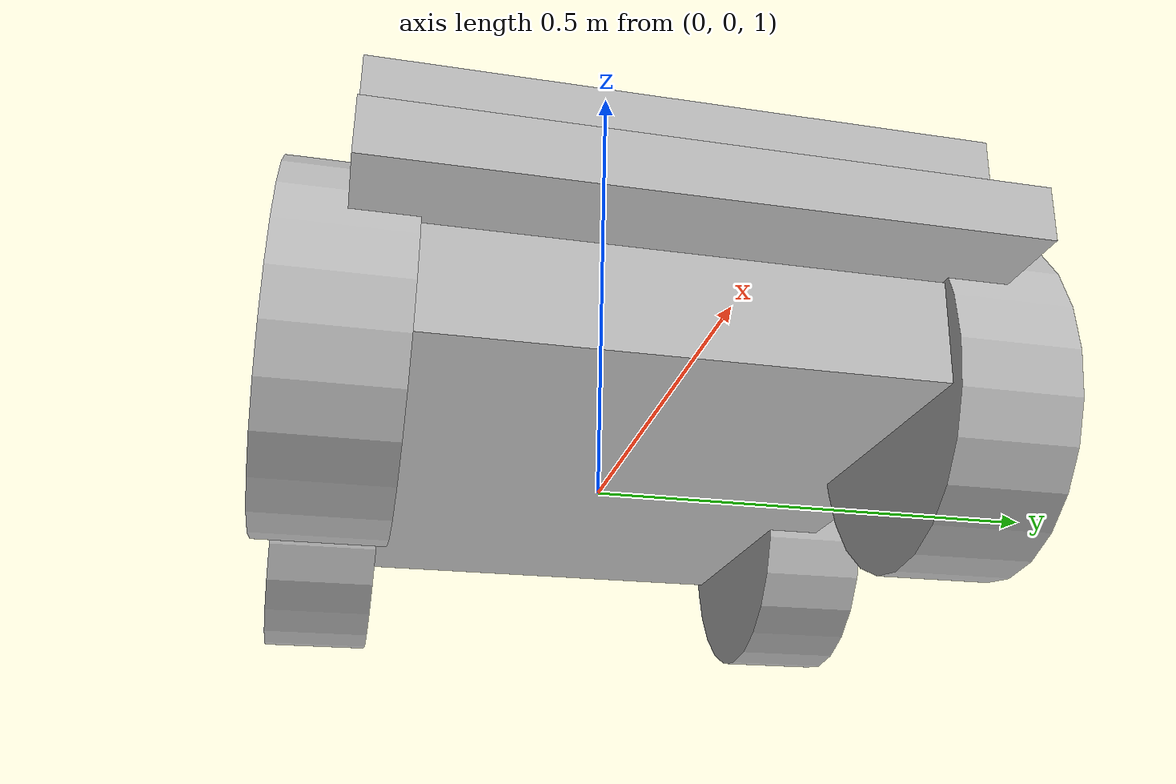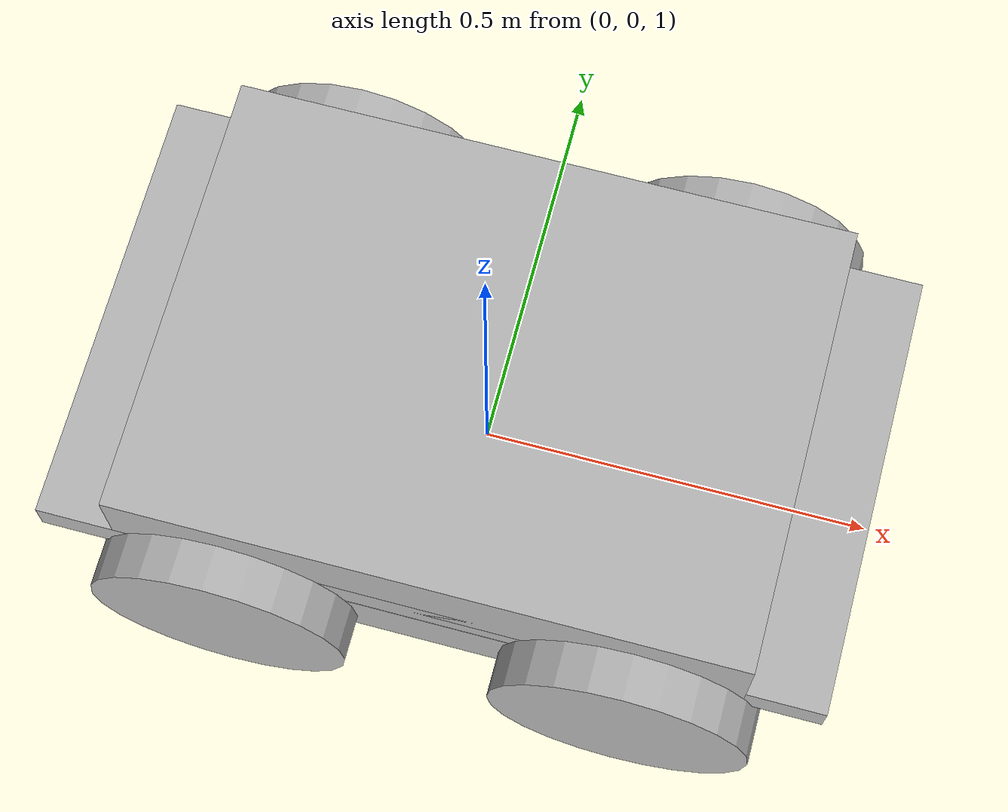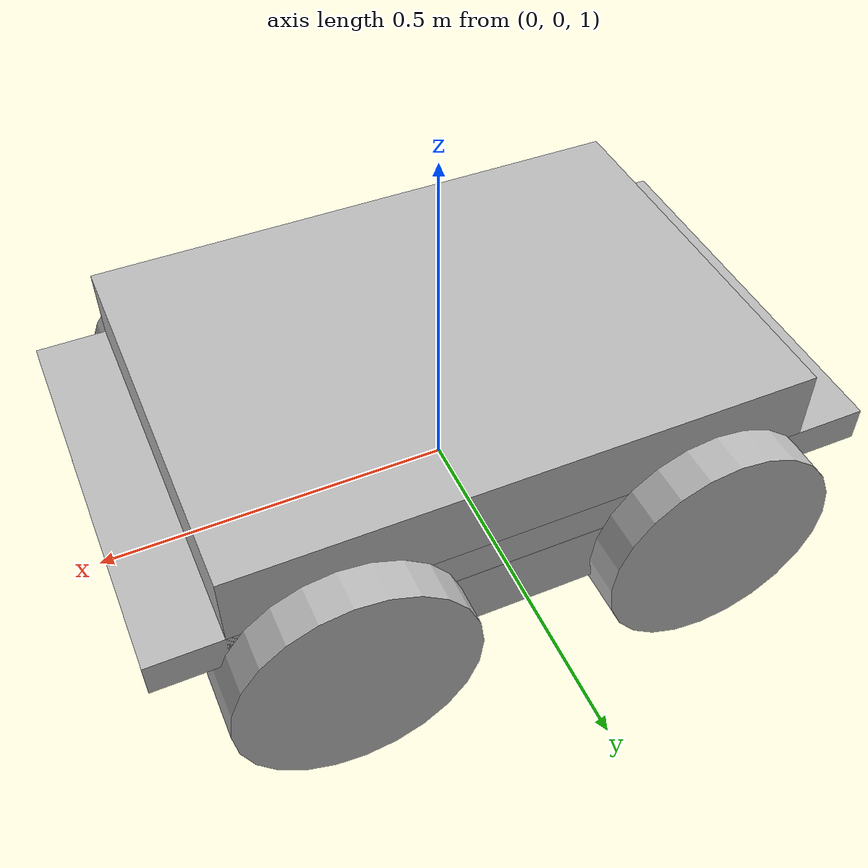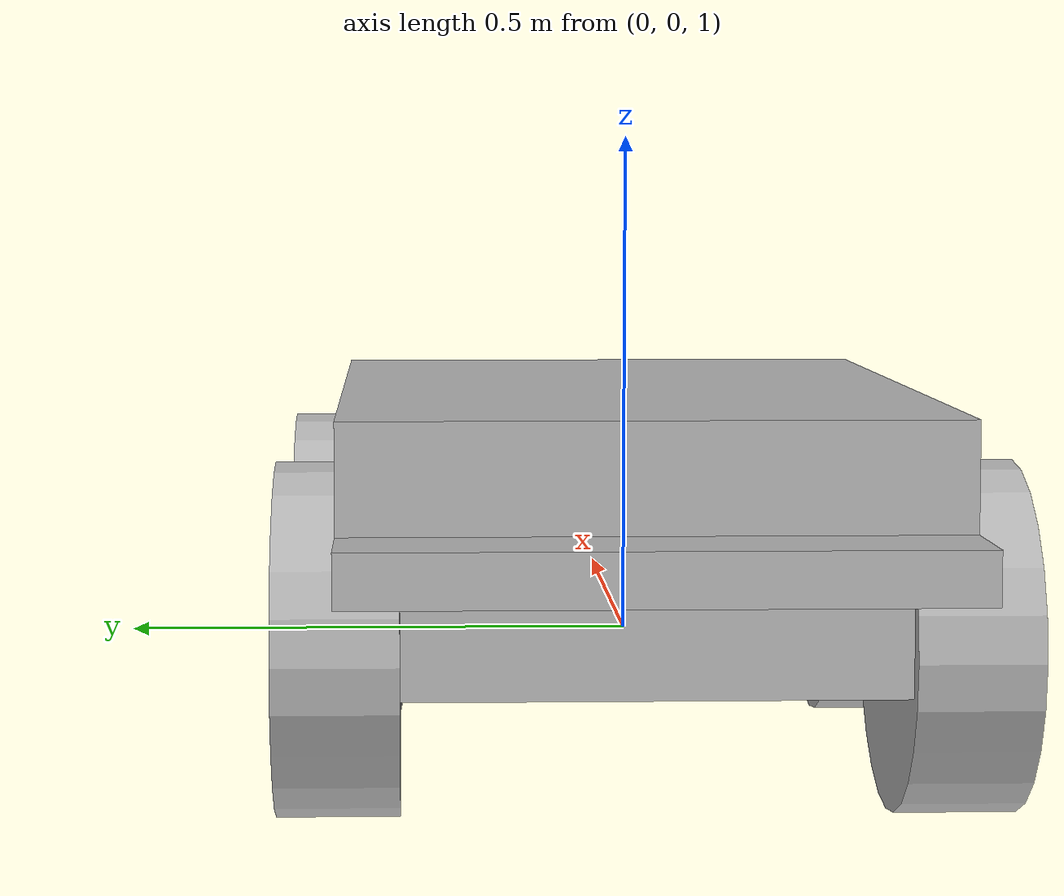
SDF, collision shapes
<?xml version="1.0" ?>
<sdf version="1.8">

<model name="marble_husky_sensor_config_2">
        <plugin filename="libignition-gazebo-triggered-publisher-system.so"
                name="ignition::gazebo::systems::TriggeredPublisher">
            <input type="ignition.msgs.Int32" topic="/keyboard/keypress">
                <match field="data">16777235</match>
            </input>
            <output type="ignition.msgs.Twist" topic="/model/marble_husky_sensor_config_2/cmd_vel">
                linear: {x: 0.5}, angular: {z: 0.0}
            </output>
        </plugin>

        <!-- Moving Backward-->
        <plugin filename="libignition-gazebo-triggered-publisher-system.so"
                name="ignition::gazebo::systems::TriggeredPublisher">
            <input type="ignition.msgs.Int32" topic="/keyboard/keypress">
                <match field="data">16777237</match>
            </input>
            <output type="ignition.msgs.Twist" topic="/model/marble_husky_sensor_config_2/cmd_vel">
                linear: {x: -0.5}, angular: {z: 0.0}
            </output>
        </plugin>

        <plugin filename="libignition-gazebo-triggered-publisher-system.so"
                name="ignition::gazebo::systems::TriggeredPublisher">
            <input type="ignition.msgs.Int32" topic="/keyboard/keypress">
                <match field="data">16777236</match>
            </input>
            <output type="ignition.msgs.Twist" topic="/model/marble_husky_sensor_config_2/cmd_vel">
                linear: {x: 0.0}, angular: {z: -2.5}
            </output>
        </plugin>

        <plugin filename="libignition-gazebo-triggered-publisher-system.so"
                name="ignition::gazebo::systems::TriggeredPublisher">
            <input type="ignition.msgs.Int32" topic="/keyboard/keypress">
                <match field="data">16777234</match>
            </input>
            <output type="ignition.msgs.Twist" topic="/model/marble_husky_sensor_config_2/cmd_vel">
                linear: {x: 0.0}, angular: {z: 0.5}
            </output>
        </plugin>

        <plugin filename="libignition-gazebo-triggered-publisher-system.so"
                name="ignition::gazebo::systems::TriggeredPublisher">
            <input type="ignition.msgs.Int32" topic="/keyboard/keypress">
                <match field="data">88</match>
            </input>
            <output type="ignition.msgs.Twist" topic="/model/marble_husky_sensor_config_2/cmd_vel">
                linear: {x: 0.0}, angular: {z: 0.0}
            </output>
        </plugin>
    <link name="base_link">
      <pose>0 0 1 0 0 0</pose>
      <inertial>
        <pose>-0.000543 -0.084945 0.062329 0 -0 0</pose>
        <mass>41.064</mass>
        <inertia>
          <ixx>0.615397</ixx>
          <ixy>-0.0240585</ixy>
          <ixz>-0.120749</ixz>
          <iyy>1.75388</iyy>
          <iyz>-0.0028322</iyz>
          <izz>2.03641</izz>
        </inertia>
      </inertial>
      <collision name="base_link_collision">
        <pose>0 0 0.12 0 0 0</pose>
        <geometry>
          <box>
            <size>0.9874 0.5709 0.05</size>
          </box>
        </geometry>
      </collision>
      <collision name="base_link_collision_bottom">
        <pose>0 0 0.046 0 0 0</pose>
        <geometry>
          <box>
            <size>0.80 0.5709 0.095</size>
          </box>
        </geometry>
      </collision>
      <collision name="base_link_collision_1">
        <pose>0 0 0.185625 0 -0 0</pose>
        <geometry>
          <box>
            <size>0.78992 0.5709 0.12375</size>
          </box>
        </geometry>
      </collision>

      <visual name="base_link_visual">
        <pose>0 0 0 0 -0 0</pose>
        <geometry>
          <mesh>
            <scale>1 1 1</scale>
            <uri>https://fuel.ignitionrobotics.org/1.0/openrobotics/models/ctu_cras_norlab_husky_sensor_config_1/tip/files/meshes/base_link.dae</uri>
          </mesh>
        </geometry>
      </visual>
      <visual name="base_link_fixed_joint_lump__front_bumper_link_visual_3">
        <pose>0.48 0 0.091 0 -0 0</pose>
        <geometry>
          <mesh>
            <scale>1 1 1</scale>
            <uri>https://fuel.ignitionrobotics.org/1.0/openrobotics/models/ctu_cras_norlab_husky_sensor_config_1/tip/files/meshes/bumper.dae</uri>
          </mesh>
        </geometry>
      </visual>
      <visual name="base_link_fixed_joint_lump__rear_bumper_link_visual_4">
        <pose>-0.48 0 0.091 0 -0 3.14159</pose>
        <geometry>
          <mesh>
            <scale>1 1 1</scale>
            <uri>https://fuel.ignitionrobotics.org/1.0/openrobotics/models/ctu_cras_norlab_husky_sensor_config_1/tip/files/meshes/bumper.dae</uri>
          </mesh>
        </geometry>
      </visual>
      <visual name="base_link_fixed_joint_lump__top_chassis_link_visual_5">
        <pose>0 0 0 0 -0 0</pose>
        <geometry>
          <mesh>
            <scale>1 1 1</scale>
            <uri>https://fuel.ignitionrobotics.org/1.0/openrobotics/models/ctu_cras_norlab_husky_sensor_config_1/tip/files/meshes/top_chassis.dae</uri>
          </mesh>
        </geometry>
      </visual>

      <velocity_decay/>
      <self_collide>0</self_collide>
      <enable_wind>0</enable_wind>
      <kinematic>0</kinematic>

    </link>

  <link name="sensors_link">
      <!-- Position the sensors link at an appropriate height on top of the Husky -->
      <pose relative_to="base_link">0 0 0.5 0 0 0</pose> <!-- Adjust the Z value as needed to position above the Husky -->

      <!-- Camera sensor definition -->
      <sensor name="rgbd_camera" type="rgbd_camera">
        <camera>
          <horizontal_fov>1.570796327</horizontal_fov>          <!-- 90 degrees -->
          <image>
            <width>640</width>
            <height>480</height>
          </image>
          <clip>
            <near>0.1</near>
            <far>100</far>
          </clip>
          <lens>
            <intrinsics>
              <fx>320</fx>              <!-- width / (2 * tan(fov[rad] / 2)) -->
              <fy>320</fy>              <!-- width / (2 * tan(fov[rad] / 2)) -->
              <cx>320</cx>              <!-- width / 2 -->
              <cy>240</cy>              <!-- height / 2 -->
              <skew>0</skew>
            </intrinsics>
          </lens>
        </camera>
                <always_on>1</always_on>
                <update_rate>30</update_rate>
                <visualize>true</visualize>
                <topic>rgbd_camera</topic>
                <enable_metrics>true</enable_metrics>
      </sensor>

      <!-- Segmentation camera sensor definition -->
      <sensor name="semantic_segmentation_camera" type="segmentation">
        <topic>semantic</topic>
        <camera>
          <segmentation_type>semantic</segmentation_type>
          <horizontal_fov>1.570796327</horizontal_fov>          <!-- 90 degrees -->
          <image>
            <width>640</width>
            <height>480</height>
          </image>
          <clip>
            <near>0.1</near>
            <far>100</far>
          </clip>
          <lens>
            <intrinsics>
              <fx>320</fx>              <!-- width / (2 * tan(fov[rad] / 2)) -->
              <fy>320</fy>              <!-- width / (2 * tan(fov[rad] / 2)) -->
              <cx>320</cx>              <!-- width / 2 -->
              <cy>240</cy>              <!-- height / 2 -->
              <skew>0</skew>
            </intrinsics>
          </lens>
        </camera>
        <always_on>1</always_on>
        <update_rate>30</update_rate>
        <visualize>true</visualize>
      </sensor>
    </link>

    <!-- Joint to connect the sensors_link to the base_link of the Husky -->
    <joint name="sensors_joint" type="fixed">
      <parent>base_link</parent>
      <child>sensors_link</child>
      <pose>0 0 5 0 0 0</pose>
    </joint>

    <link name="front_left_wheel_link">
      <pose relative_to="base_link">0.256 0.2854 0.03282 0 -0 0</pose>
      <inertial>
        <pose>0 0 0 0 -0 0</pose>
        <mass>2.637</mass>
        <inertia>
          <ixx>0.02467</ixx>
          <ixy>0</ixy>
          <ixz>0</ixz>
          <iyy>0.04411</iyy>
          <iyz>0</iyz>
          <izz>0.02467</izz>
        </inertia>
      </inertial>
      <collision name="front_left_wheel_link_collision">
        <pose>0 0 0 1.5707963267948966 -0 0</pose>
        <geometry>
          <cylinder>
            <length>0.1143</length>
            <radius>0.1651</radius>
          </cylinder>
        </geometry>
        <surface>
          <contact>
            <ode>
              <kp>1e+07</kp>
              <kd>1</kd>
            </ode>
          </contact>
          <friction>
            <ode>
              <mu>0.3</mu>
              <mu2>0.3</mu2>
              <slip1>0.5</slip1>
              <slip2>0.5</slip2>
              <fdir1>1 0 0</fdir1>
              <fdir2>0 1 0</fdir2>
            </ode>
          </friction>
        </surface>
      </collision>
      <visual name="front_left_wheel_link_visual">
        <pose>0 0 0 0 -0 0</pose>
        <geometry>
          <mesh>
            <scale>1 1 1</scale>
            <uri>https://fuel.ignitionrobotics.org/1.0/openrobotics/models/ctu_cras_norlab_husky_sensor_config_1/tip/files/meshes/wheel.dae</uri>
          </mesh>
        </geometry>
      </visual>

      <gravity>1</gravity>
      <velocity_decay/>
    </link>
    <joint name="front_left_wheel_joint" type="revolute">
      <child>front_left_wheel_link</child>
      <parent>base_link</parent>
      <axis>
        <xyz>0 1 0</xyz>
        <limit>
          <lower>-1e+16</lower>
          <upper>1e+16</upper>
        </limit>
        <dynamics>
          <spring_reference>0</spring_reference>
          <spring_stiffness>0</spring_stiffness>
        </dynamics>
        <use_parent_model_frame>1</use_parent_model_frame>
      </axis>
    </joint>
    <link name="front_right_wheel_link">
      <pose relative_to="base_link">0.256 -0.2854 0.03282 0 -0 0</pose>
      <inertial>
        <pose>0 0 0 0 -0 0</pose>
        <mass>2.637</mass>
        <inertia>
          <ixx>0.02467</ixx>
          <ixy>0</ixy>
          <ixz>0</ixz>
          <iyy>0.04411</iyy>
          <iyz>0</iyz>
          <izz>0.02467</izz>
        </inertia>
      </inertial>
      <collision name="front_right_wheel_link_collision">
        <pose>0 0 0 1.5707963267948966 -0 0</pose>
        <geometry>
          <cylinder>
            <length>0.1143</length>
            <radius>0.1651</radius>
          </cylinder>
        </geometry>
        <surface>
          <contact>
            <ode>
              <kp>1e+07</kp>
              <kd>1</kd>
            </ode>
          </contact>
          <friction>
            <ode>
              <mu>0.3</mu>
              <mu2>0.3</mu2>
              <slip1>0.5</slip1>
              <slip2>0.5</slip2>
              <fdir1>1 0 0</fdir1>
              <fdir2>0 1 0</fdir2>
            </ode>
          </friction>
        </surface>
      </collision>
      <visual name="front_right_wheel_link_visual">
        <pose>0 0 0 0 -0 0</pose>
        <geometry>
          <mesh>
            <scale>1 1 1</scale>
            <uri>https://fuel.ignitionrobotics.org/1.0/openrobotics/models/ctu_cras_norlab_husky_sensor_config_1/tip/files/meshes/wheel.dae</uri>
          </mesh>
        </geometry>
      </visual>
      <gravity>1</gravity>
      <velocity_decay/>
    </link>
    <joint name="front_right_wheel_joint" type="revolute">
      <child>front_right_wheel_link</child>
      <parent>base_link</parent>
      <axis>
        <xyz>0 1 0</xyz>
        <limit>
          <lower>-1e+16</lower>
          <upper>1e+16</upper>
        </limit>
        <dynamics>
          <spring_reference>0</spring_reference>
          <spring_stiffness>0</spring_stiffness>
        </dynamics>
        <use_parent_model_frame>1</use_parent_model_frame>
      </axis>
    </joint>
    <link name="rear_left_wheel_link">
      <pose relative_to="base_link">-0.256 0.2854 0.03282 0 -0 0</pose>
      <inertial>
        <pose>0 0 0 0 -0 0</pose>
        <mass>2.637</mass>
        <inertia>
          <ixx>0.02467</ixx>
          <ixy>0</ixy>
          <ixz>0</ixz>
          <iyy>0.04411</iyy>
          <iyz>0</iyz>
          <izz>0.02467</izz>
        </inertia>
      </inertial>
      <collision name="rear_left_wheel_link_collision">
        <pose>0 0 0 1.5707963267948966 -0 0</pose>
        <geometry>
          <cylinder>
            <length>0.1143</length>
            <radius>0.1651</radius>
          </cylinder>
        </geometry>
        <surface>
          <contact>
            <ode>
              <kp>1e+07</kp>
              <kd>1</kd>
            </ode>
          </contact>
          <friction>
            <ode>
              <mu>1</mu>
              <mu2>1</mu2>
              <slip1>0.00062</slip1>
              <slip2>0</slip2>
              <fdir1>1 0 0</fdir1>
              <fdir2>0 1 0</fdir2>
            </ode>
          </friction>
        </surface>
      </collision>
      <visual name="rear_left_wheel_link_visual">
        <pose>0 0 0 0 -0 0</pose>
        <geometry>
          <mesh>
            <scale>1 1 1</scale>
            <uri>https://fuel.ignitionrobotics.org/1.0/openrobotics/models/ctu_cras_norlab_husky_sensor_config_1/tip/files/meshes/wheel.dae</uri>
          </mesh>
        </geometry>
      </visual>
      <gravity>1</gravity>
      <velocity_decay/>
    </link>
    <joint name="rear_left_wheel_joint" type="revolute">
      <child>rear_left_wheel_link</child>
      <parent>base_link</parent>
      <axis>
        <xyz>0 1 0</xyz>
        <limit>
          <lower>-1e+16</lower>
          <upper>1e+16</upper>
        </limit>
        <dynamics>
          <spring_reference>0</spring_reference>
          <spring_stiffness>0</spring_stiffness>
        </dynamics>
        <use_parent_model_frame>1</use_parent_model_frame>
      </axis>
    </joint>
    <link name="rear_right_wheel_link">
      <pose relative_to="base_link">-0.256 -0.2854 0.03282 0 -0 0</pose>
      <inertial>
        <pose>0 0 0 0 -0 0</pose>
        <mass>2.637</mass>
        <inertia>
          <ixx>0.02467</ixx>
          <ixy>0</ixy>
          <ixz>0</ixz>
          <iyy>0.04411</iyy>
          <iyz>0</iyz>
          <izz>0.02467</izz>
        </inertia>
      </inertial>
      <collision name="rear_right_wheel_link_collision">
        <pose>0 0 0 1.5707963267948966 -0 0</pose>
        <geometry>
          <cylinder>
            <length>0.1143</length>
            <radius>0.1651</radius>
          </cylinder>
        </geometry>
        <surface>
          <contact>
            <ode>
              <kp>1e+07</kp>
              <kd>1</kd>
            </ode>
          </contact>
          <friction>
            <ode>
              <mu>1</mu>
              <mu2>1</mu2>
              <slip1>0.00062</slip1>
              <slip2>0</slip2>
              <fdir1>1 0 0</fdir1>
              <fdir2>0 1 0</fdir2>
            </ode>
          </friction>
        </surface>
      </collision>
      <visual name="rear_right_wheel_link_visual">
        <pose>0 0 0 0 -0 0</pose>
        <geometry>
          <mesh>
            <scale>1 1 1</scale>
            <uri>https://fuel.ignitionrobotics.org/1.0/openrobotics/models/ctu_cras_norlab_husky_sensor_config_1/tip/files/meshes/wheel.dae</uri>
          </mesh>
        </geometry>
      </visual>
      <gravity>1</gravity>
      <velocity_decay/>
    </link>
    <joint name="rear_right_wheel_joint" type="revolute">
      <child>rear_right_wheel_link</child>
      <parent>base_link</parent>
      <axis>
        <xyz>0 1 0</xyz>
        <limit>
          <lower>-1e+16</lower>
          <upper>1e+16</upper>
        </limit>
        <dynamics>
          <spring_reference>0</spring_reference>
          <spring_stiffness>0</spring_stiffness>
        </dynamics>
        <use_parent_model_frame>1</use_parent_model_frame>
      </axis>
    </joint>

    <static>0</static>
      <plugin
        filename="ignition-gazebo-diff-drive-system"
        name="ignition::gazebo::systems::DiffDrive">
        <!-- Ensure the joint names match those defined in your model -->
        <left_joint>rear_left_wheel_joint</left_joint>
        <right_joint>rear_right_wheel_joint</right_joint>
        <!-- Adjust wheel separation and radius based on your model's specifications -->
        <wheel_separation>0.5708</wheel_separation> <!-- Example value, adjust accordingly -->
        <wheel_radius>0.18282</wheel_radius> <!-- Example value, adjust accordingly -->
        <odom_publish_frequency>1</odom_publish_frequency>
        <max_linear_acceleration>2</max_linear_acceleration>
        <min_linear_acceleration>-2</min_linear_acceleration>
        <max_angular_acceleration>2</max_angular_acceleration>
        <min_angular_acceleration>-2</min_angular_acceleration>
        <max_linear_velocity>10</max_linear_velocity> <!-- Adjust based on desired max speed -->
        <min_linear_velocity>-10</min_linear_velocity>
        <max_angular_velocity>10</max_angular_velocity>
        <min_angular_velocity>-10</min_angular_velocity>
        <!-- Add topic to control the robot using keyboard plugin output -->
        <topic>/model/marble_husky_sensor_config_2/cmd_vel</topic>
    </plugin>

        <!-- Pose Publisher Plugin for Husky Model -->
    <plugin
        filename="ignition-gazebo-pose-publisher-system"
        name="ignition::gazebo::systems::PosePublisher">
        <publish_link_pose>true</publish_link_pose>
        <publish_sensor_pose>true</publish_sensor_pose>
        <publish_collision_pose>false</publish_collision_pose>
        <publish_visual_pose>false</publish_visual_pose>
        <publish_nested_model_pose>true</publish_nested_model_pose>
        <use_pose_vector_msg>true</use_pose_vector_msg> <!-- Use standard pose message format -->
    </plugin>

    <plugin
        filename="ignition-gazebo-joint-state-publisher-system"
        name="ignition::gazebo::systems::JointStatePublisher">
    </plugin>

  </model>

</sdf>
